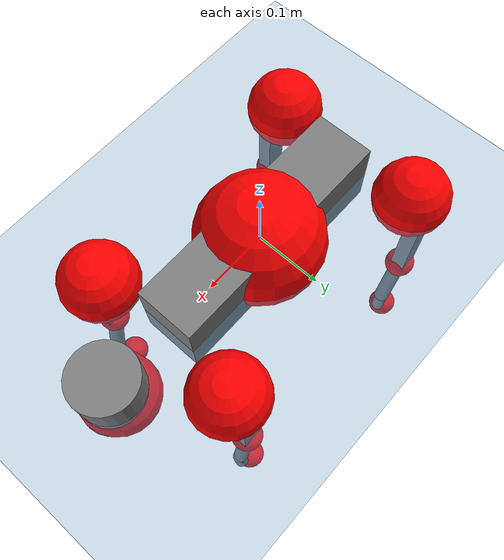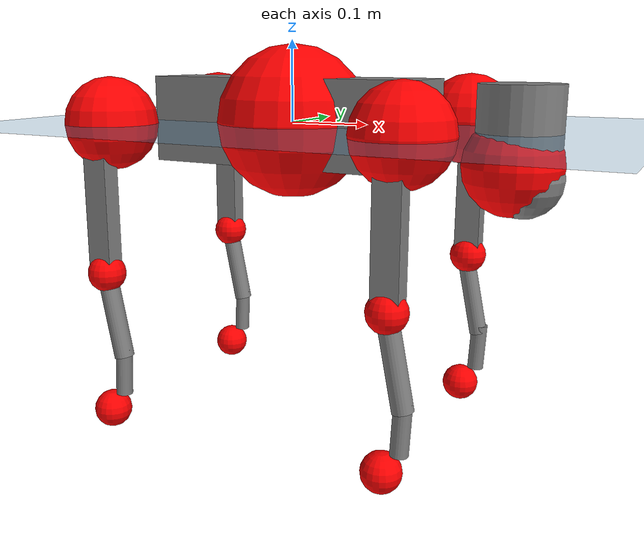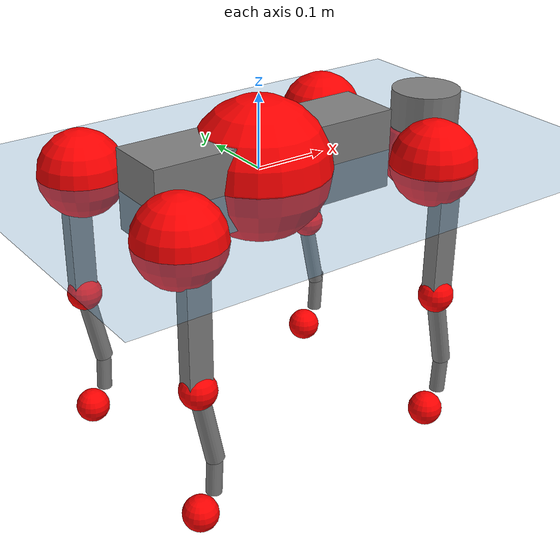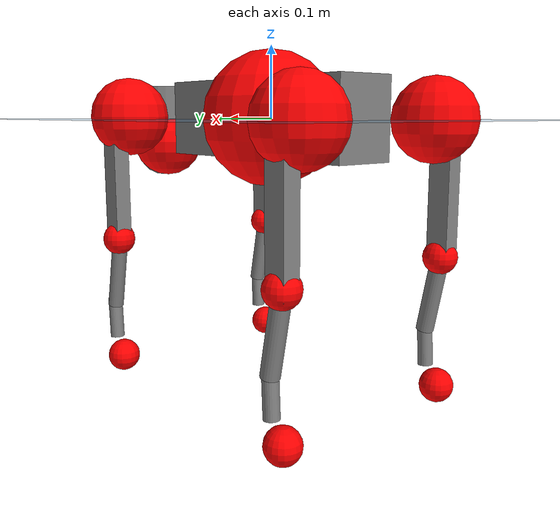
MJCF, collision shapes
<mujoco model="go2">
  <compiler angle="radian" assetdir="assets" balanceinertia="true" inertiafromgeom="false"/>

  <option timestep="0.005" density="1.2" viscosity="2e-05"/>

  <size nkey="1"/>

  <visual>
    <quality shadowsize="8192"/>
    <map shadowclip="0.5"/>
  </visual>

  <default>
    <default class="/">
      <geom contype="0" conaffinity="0" group="1" solref="-1000 -80"/>
      <site size="0.01 0.005 0.005" group="5"/>
      <general forcelimited="true" biastype="affine" gainprm="20" biasprm="0 -20 -0.5"/>
      <default class="go2">
        <joint armature="0.01" damping="0.01" frictionloss="0.2"/>
        <geom condim="1" margin="0.001"/>
        <default class="visual">
          <geom type="mesh" group="2"/>
        </default>
        <default class="collision">
          <geom group="3"/>
          <default class="foot">
            <geom size="0.022 0 0" condim="6" priority="1" friction="0.8 0.02 0.01" solimp="0.015 1 0.022"/>
          </default>
        </default>
        <default class="reward_collision_sphere">
          <geom group="5" rgba="1 0 0 1"/>
        </default>
      </default>
    </default>
  </default>

  <asset>
    <texture type="skybox" colorspace="auto" name="//unnamed_texture_0" builtin="gradient" rgb1="0.95 0.95 0.95" rgb2="0.95 0.95 0.95" width="100" height="600"/>
    <texture type="2d" colorspace="auto" name="texplane" builtin="checker" rgb1="0.345 0.575 0.748" rgb2="0.345 0.575 0.748" markrgb="1 1 1" width="512" height="512"/>
    <material name="MatPlane" class="/" texture="texplane" texuniform="true" texrepeat="2 2" specular="0.9"/>
    <material name="metal" class="/" rgba="0.9 0.95 0.95 1"/>
    <material name="black" class="/" rgba="0 0 0 1"/>
    <material name="white" class="/"/>
    <material name="gray" class="/" rgba="0.671705 0.692426 0.77427 1"/>
    <mesh name="base_0" class="/" file="base_0.obj"/>
    <mesh name="base_1" class="/" file="base_1.obj"/>
    <mesh name="base_2" class="/" file="base_2.obj"/>
    <mesh name="base_3" class="/" file="base_3.obj"/>
    <mesh name="base_4" class="/" file="base_4.obj"/>
    <mesh name="hip_0" class="/" file="hip_0.obj"/>
    <mesh name="hip_1" class="/" file="hip_1.obj"/>
    <mesh name="thigh_0" class="/" file="thigh_0.obj"/>
    <mesh name="thigh_1" class="/" file="thigh_1.obj"/>
    <mesh name="thigh_mirror_0" class="/" file="thigh_mirror_0.obj"/>
    <mesh name="thigh_mirror_1" class="/" file="thigh_mirror_1.obj"/>
    <mesh name="calf_0" class="/" file="calf_0.obj"/>
    <mesh name="calf_1" class="/" file="calf_1.obj"/>
    <mesh name="calf_mirror_0" class="/" file="calf_mirror_0.obj"/>
    <mesh name="calf_mirror_1" class="/" file="calf_mirror_1.obj"/>
    <mesh name="foot" class="/" file="foot.obj"/>
  </asset>

  <worldbody>
    <geom name="floor" class="/" size="100 100 0.125" type="plane" group="0" material="MatPlane"/>
    <light name="toplight_shadow" class="/" pos="0 0 5" dir="0.0990148 0.0990148 -0.990148" type="directional" ambient="0.04 0.04 0.04" diffuse="0.55 0.55 0.55" specular="0.12 0.12 0.12"/>
    <light name="toplight_fill" class="/" pos="0 0 5" dir="0.0990148 0.0990148 -0.990148" type="directional" castshadow="false" ambient="0.04 0.04 0.04" diffuse="0.3 0.3 0.3" specular="0.08 0.08 0.08"/>
    <body name="trunk" childclass="go2" pos="0.000774518 0.000249073 0.000763703" quat="1 -0.000188141 0.000396666 -8.37746e-05">
      <inertial pos="0.0214369 -0.000663872 -0.00502909" quat="-0.00255824 0.713025 -0.00130063 0.701133" mass="5.94992" diaginertia="0.100714 0.0984624 0.0117034"/>
      <joint name="//unnamed_joint_0" type="free" armature="0" damping="0" frictionloss="0"/>
      <geom name="//unnamed_geom_1" class="visual" material="black" mesh="base_0"/>
      <geom name="//unnamed_geom_2" class="visual" material="black" mesh="base_1"/>
      <geom name="//unnamed_geom_3" class="visual" material="black" mesh="base_2"/>
      <geom name="//unnamed_geom_4" class="visual" material="white" mesh="base_3"/>
      <geom name="//unnamed_geom_5" class="visual" material="gray" mesh="base_4"/>
      <geom name="trunk_1" class="collision" size="0.178387 0.044336 0.0540567" type="box"/>
      <geom name="trunk_2" class="collision" size="0.0474182 0.0426764" pos="0.280656 0 0.00859651" type="cylinder"/>
      <geom name="trunk_3" class="collision" size="0.0445731" pos="0.288535 0 -0.0515791"/>
      <geom name="//unnamed_geom_9" class="reward_collision_sphere" size="0.0948363"/>
      <geom name="//unnamed_geom_10" class="reward_collision_sphere" size="0.0569018" pos="0.275733 0 -0.0386843"/>
      <site name="imu" pos="-0.0294929 -0.00483792 0.0370285" size="0.00948363"/>
      <camera name="track" pos="0 -2.00136 0" quat="0.707107 0.707107 0 0" mode="trackcom"/>
      <camera name="ego_camera" pos="0.307245 0 0.0386843" quat="-0.5 -0.5 0.5 0.5"/>
      <body name="FL_hip" pos="0.189719 0.0465479 0.00210558" quat="1 -0.000216579 -0.000127613 -7.82332e-05">
        <inertial pos="-0.00445493 0.00183151 -0.000559505" quat="0.494694 0.502005 0.504891 0.498351" mass="0.580742" diaginertia="0.000821874 0.000599387 0.000224007"/>
        <joint name="FL_hip_joint" pos="0 0 0" axis="0.999999 0.00129902 -0.000200598" stiffness="0.00192775" range="-1.0442 1.05253" armature="0.00917294" damping="0.0101559" frictionloss="0.186808"/>
        <geom name="//unnamed_geom_11" class="visual" material="metal" mesh="hip_0"/>
        <geom name="//unnamed_geom_12" class="visual" material="gray" mesh="hip_1"/>
        <geom name="//unnamed_geom_13" class="collision" size="0.0436247 0.0189673" pos="0 0.0800543 0" quat="0.707107 0.707107 0 0" type="cylinder"/>
        <geom name="//unnamed_geom_14" class="reward_collision_sphere" size="0.0569018" pos="0 0.0700475 0"/>
        <body name="FL_thigh" pos="-0.000783504 0.0951118 0.00180873" quat="1 0.00013069 0.000104898 -5.25544e-05">
          <inertial pos="-0.00418437 -0.0225394 -0.0289616" quat="0.829162 0.0857927 -0.0207153 0.551997" mass="0.973916" diaginertia="0.00551966 0.00590337 0.000413612"/>
          <joint name="FL_thigh_joint" pos="0 0 0" axis="-0.000301882 0.999993 -0.00367638" range="-1.57035 3.51062" armature="0.00974141" damping="0.000402456" frictionloss="0.189276"/>
          <geom name="//unnamed_geom_15" class="visual" material="metal" mesh="thigh_0"/>
          <geom name="//unnamed_geom_16" class="visual" material="gray" mesh="thigh_1"/>
          <geom name="//unnamed_geom_17" class="collision" size="0.101001 0.0116175 0.0161222" pos="0 0 -0.0915529" quat="0.707107 0 0.707107 0" type="box"/>
          <body name="FL_calf" pos="3.42466e-05 0.000416566 -0.183903" quat="1 -5.80078e-06 -1.06873e-05 1.67634e-05">
            <inertial pos="0.00608473 0.000300426 -0.121684" quat="0.710745 0.00162279 -0.00446745 0.703434" mass="0.206837" diaginertia="0.00136846 0.00146266 2.50011e-05"/>
            <joint name="FL_calf_joint" pos="0 0 0" axis="-0.00580153 0.999971 -0.00485284" range="-2.74137 -0.834109" armature="0.00949494" damping="0.00411559" frictionloss="0.188937"/>
            <geom name="//unnamed_geom_18" class="visual" material="gray" mesh="calf_0"/>
            <geom name="//unnamed_geom_19" class="visual" material="black" mesh="calf_1"/>
            <geom name="FL_calf0" class="collision" size="0.0113804 0.0569018" pos="0.00787808 0 -0.0515791" quat="0.994493 0 -0.104807 0" type="cylinder"/>
            <geom name="//unnamed_geom_21" class="collision" size="0.010432 0.0308218" pos="0.0196952 0 -0.127228" quat="0.999688 0 0.0249974 0" type="cylinder"/>
            <geom name="//unnamed_geom_22" class="visual" pos="0 0 -0.183106" quat="1 0 0 0" material="black" mesh="foot"/>
            <geom name="FL_foot" class="foot" size="0.0168682" pos="-0.00196952 0 -0.183106"/>
            <geom name="//unnamed_geom_24" class="reward_collision_sphere" size="0.0237091"/>
            <geom name="//unnamed_geom_25" class="reward_collision_sphere" size="0.0237091" pos="-0.00196952 0 -0.183106"/>
            <site name="FL_foot" class="foot" pos="-0.00196952 0 -0.183106" size="0.00948363"/>
          </body>
        </body>
      </body>
      <body name="FR_hip" pos="0.190075 -0.0467061 0.0011092" quat="1 -0.000147484 -3.37213e-05 2.58748e-05">
        <inertial pos="-0.00557155 -0.000995769 -0.000645406" quat="0.497954 0.506089 0.499874 0.496027" mass="0.582299" diaginertia="0.000831575 0.000598265 0.000227897"/>
        <joint name="FR_hip_joint" pos="0 0 0" axis="0.999995 0.00276331 -0.00167594" stiffness="0.00423145" range="-1.06381 1.04341" armature="0.00949441" damping="0.0147573" frictionloss="0.189788"/>
        <geom name="//unnamed_geom_26" class="visual" pos="0 1.22858e-09 5.26961e-08" quat="4.63268e-05 1 0 0" material="metal" mesh="hip_0"/>
        <geom name="//unnamed_geom_27" class="visual" pos="0 1.99167e-09 -1.30338e-07" quat="4.63268e-05 1 0 0" material="gray" mesh="hip_1"/>
        <geom name="//unnamed_geom_28" class="collision" size="0.0436247 0.0189673" pos="0 -0.0800543 0" quat="0.707107 0.707107 0 0" type="cylinder"/>
        <geom name="//unnamed_geom_29" class="reward_collision_sphere" size="0.0569018" pos="0 -0.0700475 0"/>
        <body name="FR_thigh" pos="-0.000634056 -0.0949848 0.00134802" quat="1 2.63255e-05 4.6177e-05 -1.3164e-05">
          <inertial pos="-0.00355856 0.0224074 -0.0284678" quat="0.550084 -0.0198964 0.089816 0.830027" mass="0.989489" diaginertia="0.00559385 0.00589019 0.000414482"/>
          <joint name="FR_thigh_joint" pos="0 0 0" axis="-0.0026727 -0.999996 0.00105748" range="-3.49982 1.55949" armature="0.00971431" damping="0.0135626" frictionloss="0.194363"/>
          <geom name="//unnamed_geom_30" class="visual" material="metal" mesh="thigh_mirror_0"/>
          <geom name="//unnamed_geom_31" class="visual" material="gray" mesh="thigh_mirror_1"/>
          <geom name="//unnamed_geom_32" class="collision" size="0.101001 0.0116175 0.0161222" pos="0 0 -0.0915529" quat="0.707107 0 0.707107 0" type="box"/>
          <body name="FR_calf" pos="-0.000475596 -0.000119099 -0.182696" quat="1 -2.84142e-05 -3.28192e-06 3.51542e-05">
            <inertial pos="0.00670391 0.000909497 -0.120716" quat="0.701386 -0.00727135 0.000418977 0.712745" mass="0.204548" diaginertia="0.00135431 0.00146489 2.45692e-05"/>
            <joint name="FR_calf_joint" pos="0 0 0" axis="7.89066e-05 -0.999996 -0.00288475" range="0.840836 2.73678" armature="0.00915235" damping="0.00724104" frictionloss="0.190247"/>
            <geom name="//unnamed_geom_33" class="visual" material="gray" mesh="calf_mirror_0"/>
            <geom name="//unnamed_geom_34" class="visual" material="black" mesh="calf_mirror_1"/>
            <geom name="FR_calf0" class="collision" size="0.0123287 0.0569018" pos="0.00984759 0 -0.0515791" quat="0.995004 0 -0.0998334 0" type="cylinder"/>
            <geom name="//unnamed_geom_36" class="collision" size="0.010432 0.0308218" pos="0.0196952 0 -0.127228" quat="0.999688 0 0.0249974 0" type="cylinder"/>
            <geom name="//unnamed_geom_37" class="visual" pos="0 0 -0.183106" quat="1 0 0 0" material="black" mesh="foot"/>
            <geom name="FR_foot" class="foot" size="0.0224265" pos="-0.00196952 0 -0.183106"/>
            <geom name="//unnamed_geom_39" class="reward_collision_sphere" size="0.0237091"/>
            <geom name="//unnamed_geom_40" class="reward_collision_sphere" size="0.0237091" pos="-0.00196952 0 -0.183106"/>
            <site name="FR_foot" class="foot" pos="-0.00196952 0 -0.183106" size="0.00948363"/>
          </body>
        </body>
      </body>
      <body name="RL_hip" pos="-0.19083 0.0475808 -0.00123583" quat="1 -0.000232076 -0.000259248 0.000175233">
        <inertial pos="0.00540458 0.00224153 -0.000767399" quat="0.505058 0.498957 0.496976 0.498971" mass="0.579017" diaginertia="0.00081649 0.000603927 0.000224405"/>
        <joint name="RL_hip_joint" pos="0 0 0" axis="-0.999875 -0.0155532 -0.00281359" stiffness="0.00268501" range="-1.03245 1.04746" armature="0.00943783" damping="0.00975736" frictionloss="0.190645"/>
        <geom name="//unnamed_geom_41" class="visual" pos="-1.08989e-09 0 -2.13643e-07" quat="4.63268e-05 0 1 0" material="metal" mesh="hip_0"/>
        <geom name="//unnamed_geom_42" class="visual" pos="-1.76684e-09 0 -1.89471e-07" quat="4.63268e-05 0 1 0" material="gray" mesh="hip_1"/>
        <geom name="//unnamed_geom_43" class="collision" size="0.0436247 0.0189673" pos="0 0.0800543 0" quat="0.707107 0.707107 0 0" type="cylinder"/>
        <geom name="//unnamed_geom_44" class="reward_collision_sphere" size="0.0569018" pos="0 0.0700475 0"/>
        <body name="RL_thigh" pos="-0.000125479 0.0949399 -0.000826747" quat="1 3.30206e-05 2.85152e-05 9.73255e-06">
          <inertial pos="-0.00353473 -0.0220189 -0.0291165" quat="0.829572 0.0845815 -0.0198779 0.551599" mass="0.971813" diaginertia="0.00545355 0.00582918 0.00040947"/>
          <joint name="RL_thigh_joint" pos="0 0 0" axis="4.16329e-05 1 0.000423857" range="-0.525568 4.52953" armature="0.00938211" damping="0.0111149" frictionloss="0.187774"/>
          <geom name="//unnamed_geom_45" class="visual" material="metal" mesh="thigh_0"/>
          <geom name="//unnamed_geom_46" class="visual" material="gray" mesh="thigh_1"/>
          <geom name="//unnamed_geom_47" class="collision" size="0.101001 0.0116175 0.0161222" pos="0 0 -0.0915529" quat="0.707107 0 0.707107 0" type="box"/>
          <body name="RL_calf" pos="0.00122716 -0.00119528 -0.18265" quat="1 -0.00014061 -8.03564e-05 -9.66417e-05">
            <inertial pos="0.00532149 0.000460384 -0.122291" quat="0.711998 0.00124398 -0.00585595 0.702156" mass="0.207296" diaginertia="0.00137969 0.00145998 2.49244e-05"/>
            <joint name="RL_calf_joint" pos="0 0 0" axis="0.00730325 0.999932 0.00909074" range="-2.71813 -0.836504" armature="0.00958627" damping="0.000808369" frictionloss="0.181382"/>
            <geom name="//unnamed_geom_48" class="visual" material="gray" mesh="calf_0"/>
            <geom name="//unnamed_geom_49" class="visual" material="black" mesh="calf_1"/>
            <geom name="RL_calf0" class="collision" size="0.0123287 0.0569018" pos="0.00984759 0 -0.0515791" quat="0.995004 0 -0.0998334 0" type="cylinder"/>
            <geom name="//unnamed_geom_51" class="collision" size="0.010432 0.0308218" pos="0.0196952 0 -0.127228" quat="0.999688 0 0.0249974 0" type="cylinder"/>
            <geom name="//unnamed_geom_52" class="visual" pos="0 0 -0.183106" quat="1 0 0 0" material="black" mesh="foot"/>
            <geom name="RL_foot" class="foot" size="0.0186592" pos="-0.00196952 0 -0.183106"/>
            <geom name="//unnamed_geom_54" class="reward_collision_sphere" size="0.0237091"/>
            <geom name="//unnamed_geom_55" class="reward_collision_sphere" size="0.0237091" pos="-0.00196952 0 -0.183106"/>
            <site name="RL_foot" class="foot" pos="-0.00196952 0 -0.183106" size="0.00948363"/>
          </body>
        </body>
      </body>
      <body name="RR_hip" pos="-0.190572 -0.04736 -0.00156992" quat="1 -0.000166484 -0.000117277 6.74023e-05">
        <inertial pos="0.00523178 -0.00204023 0.000828262" quat="0.499119 0.496993 0.498202 0.505642" mass="0.569168" diaginertia="0.000806965 0.000588928 0.000223041"/>
        <joint name="RR_hip_joint" pos="0 0 0" axis="-0.999993 0.0036233 0.00132811" range="-1.05407 1.05719" armature="0.00991047" damping="0.00405074" frictionloss="0.188672"/>
        <geom name="//unnamed_geom_56" class="visual" pos="1.09044e-09 1.22858e-09 -2.6634e-07" quat="2.14617e-09 4.63268e-05 4.63268e-05 -1" material="metal" mesh="hip_0"/>
        <geom name="//unnamed_geom_57" class="visual" pos="1.76548e-09 1.99167e-09 -5.91337e-08" quat="2.14617e-09 4.63268e-05 4.63268e-05 -1" material="gray" mesh="hip_1"/>
        <geom name="//unnamed_geom_58" class="collision" size="0.0436247 0.0189673" pos="0 -0.0800543 0" quat="0.707107 0.707107 0 0" type="cylinder"/>
        <geom name="//unnamed_geom_59" class="reward_collision_sphere" size="0.0569018" pos="0 -0.0700475 0"/>
        <body name="RR_thigh" pos="0.000602923 -0.0957616 -0.000962227" quat="1 1.75426e-05 -1.4882e-05 -1.39443e-05">
          <inertial pos="-0.00263907 0.0216238 -0.028169" quat="0.551309 -0.0200141 0.0852081 0.829697" mass="0.992116" diaginertia="0.00549395 0.00589902 0.000412254"/>
          <joint name="RR_thigh_joint" pos="0 0 0" axis="-0.00500718 -0.99995 -0.00864262" range="-4.54635 0.526037" armature="0.00941745" damping="0.0135439" frictionloss="0.19286"/>
          <geom name="//unnamed_geom_60" class="visual" material="metal" mesh="thigh_mirror_0"/>
          <geom name="//unnamed_geom_61" class="visual" material="gray" mesh="thigh_mirror_1"/>
          <geom name="//unnamed_geom_62" class="collision" size="0.101001 0.0116175 0.0161222" pos="0 0 -0.0915529" quat="0.707107 0 0.707107 0" type="box"/>
          <body name="RR_calf" pos="0.00147928 -0.000107951 -0.183777" quat="1 -7.24382e-05 -2.83019e-05 -3.80664e-06">
            <inertial pos="0.00596742 0.000617399 -0.121739" quat="0.70348 -0.00297572 0.00193808 0.710706" mass="0.209792" diaginertia="0.00138616 0.0014885 2.51185e-05"/>
            <joint name="RR_calf_joint" pos="0 0 0" axis="-0.00231457 -0.999972 0.00710213" range="0.832153 2.70879" armature="0.00976039" damping="0.00560977" frictionloss="0.188066"/>
            <geom name="//unnamed_geom_63" class="visual" material="gray" mesh="calf_mirror_0"/>
            <geom name="//unnamed_geom_64" class="visual" material="black" mesh="calf_mirror_1"/>
            <geom name="RR_calf0" class="collision" size="0.0123287 0.0569018" pos="0.00984759 0 -0.0515791" quat="0.995004 0 -0.0998334 0" type="cylinder"/>
            <geom name="//unnamed_geom_66" class="collision" size="0.010432 0.0308218" pos="0.0196952 0 -0.127228" quat="0.999688 0 0.0249974 0" type="cylinder"/>
            <geom name="//unnamed_geom_67" class="visual" pos="0 0 -0.183106" quat="1 0 0 0" material="black" mesh="foot"/>
            <geom name="RR_foot" class="foot" size="0.0227103" pos="-0.00196952 0 -0.183106"/>
            <geom name="//unnamed_geom_69" class="reward_collision_sphere" size="0.0237091"/>
            <geom name="//unnamed_geom_70" class="reward_collision_sphere" size="0.0237091" pos="-0.00196952 0 -0.183106"/>
            <site name="RR_foot" class="foot" pos="-0.00196952 0 -0.183106" size="0.00948363"/>
          </body>
        </body>
      </body>
    </body>
  </worldbody>

  <contact>
    <pair class="/" geom1="floor" geom2="FL_foot" name="//unnamed_contact_0"/>
    <pair class="/" geom1="floor" geom2="FR_foot" name="//unnamed_contact_1"/>
    <pair class="/" geom1="floor" geom2="RL_foot" name="//unnamed_contact_2"/>
    <pair class="/" geom1="floor" geom2="RR_foot" name="//unnamed_contact_3"/>
  </contact>

  <actuator>
    <general name="FL_hip" class="/" joint="FL_hip_joint" forcerange="-22.7099 22.7099" gainprm="18.9919" biasprm="0 -18.9919 -0.471529"/>
    <general name="FL_thigh" class="/" joint="FL_thigh_joint" forcerange="-22.3911 22.3911" gainprm="18.9919" biasprm="0 -18.9919 -0.471529"/>
    <general name="FL_calf" class="/" joint="FL_calf_joint" forcerange="-42.6703 42.6703" gainprm="18.9919" biasprm="0 -18.9919 -0.471529"/>
    <general name="FR_hip" class="/" joint="FR_hip_joint" forcerange="-22.2922 22.2922" gainprm="18.9919" biasprm="0 -18.9919 -0.471529"/>
    <general name="FR_thigh" class="/" joint="FR_thigh_joint" forcerange="-21.6725 21.6725" gainprm="18.9919" biasprm="0 -18.9919 -0.471529"/>
    <general name="FR_calf" class="/" joint="FR_calf_joint" forcerange="-44.9952 44.9952" gainprm="18.9919" biasprm="0 -18.9919 -0.471529"/>
    <general name="RL_hip" class="/" joint="RL_hip_joint" forcerange="-22.7636 22.7636" gainprm="18.9919" biasprm="0 -18.9919 -0.471529"/>
    <general name="RL_thigh" class="/" joint="RL_thigh_joint" forcerange="-21.8791 21.8791" gainprm="18.9919" biasprm="0 -18.9919 -0.471529"/>
    <general name="RL_calf" class="/" joint="RL_calf_joint" forcerange="-42.4767 42.4767" gainprm="18.9919" biasprm="0 -18.9919 -0.471529"/>
    <general name="RR_hip" class="/" joint="RR_hip_joint" forcerange="-22.6775 22.6775" gainprm="18.9919" biasprm="0 -18.9919 -0.471529"/>
    <general name="RR_thigh" class="/" joint="RR_thigh_joint" forcerange="-21.7235 21.7235" gainprm="18.9919" biasprm="0 -18.9919 -0.471529"/>
    <general name="RR_calf" class="/" joint="RR_calf_joint" forcerange="-44.0121 44.0121" gainprm="18.9919" biasprm="0 -18.9919 -0.471529"/>
  </actuator>

  <sensor>
    <gyro site="imu" name="imu_angular_velocity"/>
    <velocimeter site="imu" name="imu_linear_velocity"/>
    <framelinvel objtype="site" objname="FL_foot" name="FL_foot_global_linear_velocity"/>
    <framelinvel objtype="site" objname="FR_foot" name="FR_foot_global_linear_velocity"/>
    <framelinvel objtype="site" objname="RL_foot" name="RL_foot_global_linear_velocity"/>
    <framelinvel objtype="site" objname="RR_foot" name="RR_foot_global_linear_velocity"/>
  </sensor>

  <keyframe>
    <key name="home" qpos="0 0 0.325 1 0 0 0 0.1 0.8 -1.5 -0.1 -0.8 1.5 -0.1 0.8 -1.5 0.1 -0.8 1.5"/>
  </keyframe>
</mujoco>
